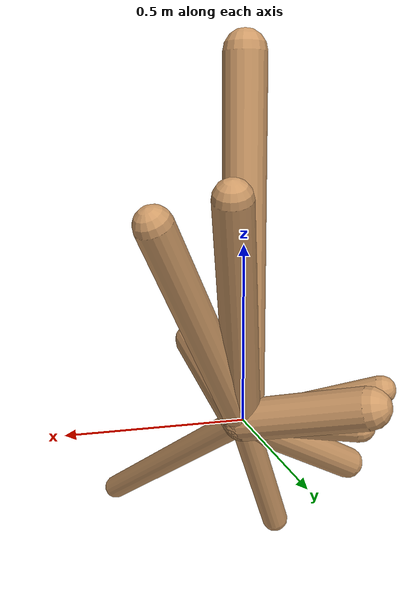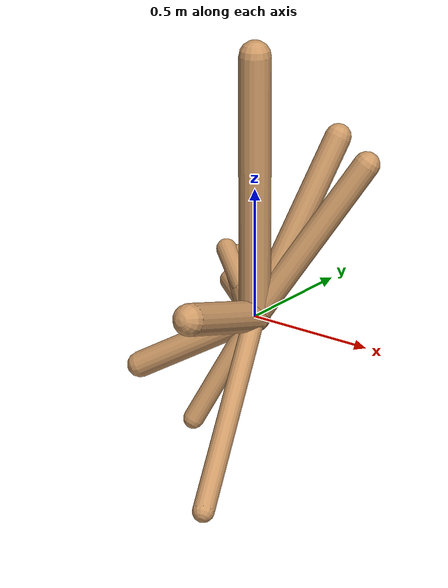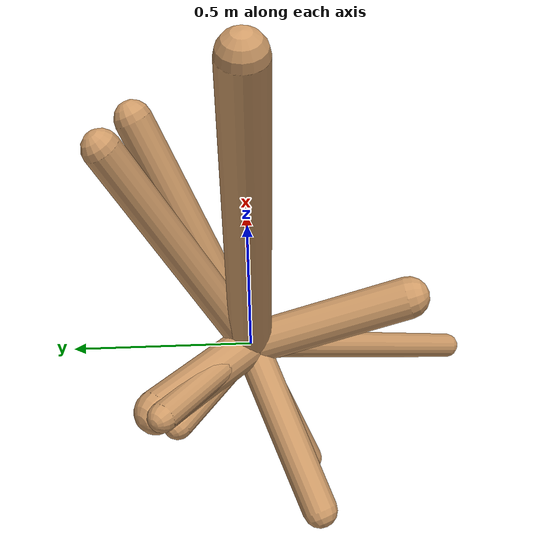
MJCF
<!--
                    joint_number: 9
                    -->
                    <mujoco model="randomrobot">
                        <compiler angle="degree" coordinate="global" inertiafromgeom="true"/>
                        <default>
                        <joint armature="0.01" damping=".1" limited="true"/>
                        <geom conaffinity="0" condim="3" contype="1" density="1000" friction="0.8 .1 .1" rgba="0.8 0.6 .4 1"/>
                        </default>
                        <option integrator="RK4" timestep="0.002"/>
                        <worldbody>
                    <body name='torso' pos='0.00 0.00 0.60'><geom fromto='0 0 0 0.00 0.00 1.00' name='torso_geom' size='0.06' type='capsule'/><inertial mass='0.3'/><body name='L0_D1' pos='0.00 0.00 0.78'><joint axis='0 0 1' name='L0_D1_joint' pos='0 0 0' range='79.36 164.29' type='hinge'/><geom fromto='0 0 0 0.04 -0.44 0.14' name='L0_D1_geom' size='0.06' type='capsule'/><inertial mass='0.3'/><body name='L1_D0' pos='0.01 -0.10 0.03'><joint axis='1 0 0' name='L1_D0_joint' pos='0 0 0' range='27.06 118.65' type='hinge'/><geom fromto='0 0 0 -0.41 -0.18 -0.24' name='L1_D0_geom' size='0.05' type='capsule'/><inertial mass='0.3'/></body><body name='L2_D0' pos='0.02 -0.28 0.09'><joint axis='1 0 0' name='L2_D0_joint' pos='0 0 0' range='10.42 52.15' type='hinge'/><geom fromto='0 0 0 -0.27 0.20 0.02' name='L2_D0_geom' size='0.04' type='capsule'/><inertial mass='0.3'/></body></body><body name='L3_D1' pos='0.00 0.00 0.66'><joint axis='0 1 0' name='L3_D1_joint' pos='0 0 0' range='71.56 152.15' type='hinge'/><geom fromto='0 0 0 -0.31 0.23 0.13' name='L3_D1_geom' size='0.04' type='capsule'/><inertial mass='0.3'/><body name='L4_D0' pos='-0.26 0.19 0.11'><joint axis='0 0 1' name='L4_D0_joint' pos='0 0 0' range='56.00 103.77' type='hinge'/><geom fromto='0 0 0 0.28 -0.67 -0.45' name='L4_D0_geom' size='0.04' type='capsule'/><inertial mass='0.3'/></body></body><body name='L5_D1' pos='0.00 0.00 0.64'><joint axis='0 1 0' name='L5_D1_joint' pos='0 0 0' range='48.52 159.71' type='hinge'/><geom fromto='0 0 0 -0.27 0.25 0.09' name='L5_D1_geom' size='0.06' type='capsule'/><inertial mass='0.3'/><body name='L6_D0' pos='-0.24 0.23 0.08'><joint axis='0 0 1' name='L6_D0_joint' pos='0 0 0' range='126.33 130.51' type='hinge'/><geom fromto='0 0 0 -0.16 -0.17 -0.40' name='L6_D0_geom' size='0.04' type='capsule'/><inertial mass='0.3'/></body><body name='L7_D0' pos='-0.13 0.12 0.04'><joint axis='0 1 0' name='L7_D0_joint' pos='0 0 0' range='2.36 15.03' type='hinge'/><geom fromto='0 0 0 0.30 0.28 0.58' name='L7_D0_geom' size='0.05' type='capsule'/><inertial mass='0.3'/></body></body><body name='L8_D1' pos='0.00 0.00 0.92'><joint axis='0 0 1' name='L8_D1_joint' pos='0 0 0' range='12.08 48.73' type='hinge'/><geom fromto='0 0 0 0.13 0.34 0.64' name='L8_D1_geom' size='0.05' type='capsule'/><inertial mass='0.3'/></body></body>
                        </worldbody>
                    </mujoco>
